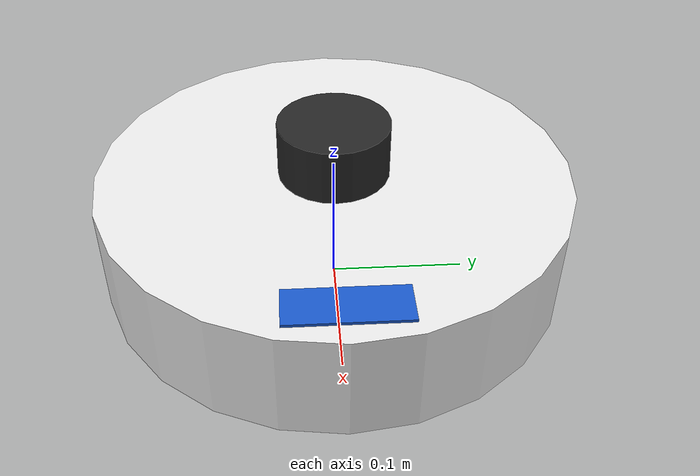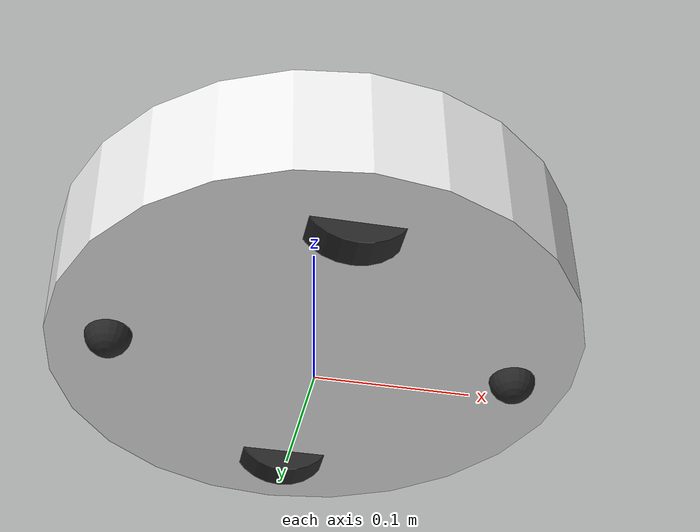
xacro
<?xml version="1.0"?>
<robot name="cleaning_robot" xmlns:xacro="http://www.ros.org/wiki/xacro">

  <!-- ===================== Parameters ===================== -->
  <xacro:property name="PI" value="3.14159265359"/>

  <xacro:property name="chassis_radius" value="0.17"/>
  <xacro:property name="chassis_height" value="0.08"/>
  <xacro:property name="chassis_mass"   value="3.0"/>

  <xacro:property name="wheel_radius"     value="0.035"/>
  <xacro:property name="wheel_width"      value="0.02"/>
  <xacro:property name="wheel_separation" value="0.24"/>
  <xacro:property name="wheel_mass"       value="0.2"/>

  <xacro:property name="caster_radius" value="0.015"/>
  <xacro:property name="caster_offset_x" value="0.13"/>
  <xacro:property name="caster_mass"   value="0.05"/>

  <!-- Chassis bottom sits 1.5 cm above the floor -->
  <xacro:property name="ground_clearance" value="0.015"/>
  <xacro:property name="chassis_z" value="${ground_clearance - wheel_radius + chassis_height / 2}"/>

  <xacro:property name="lidar_radius" value="0.04"/>
  <xacro:property name="lidar_height" value="0.04"/>

  <!-- ===================== Inertia macros ===================== -->
  <xacro:macro name="cylinder_inertia" params="m r h">
    <inertia ixx="${m * (3 * r * r + h * h) / 12}" ixy="0" ixz="0"
             iyy="${m * (3 * r * r + h * h) / 12}" iyz="0"
             izz="${m * r * r / 2}"/>
  </xacro:macro>

  <xacro:macro name="sphere_inertia" params="m r">
    <inertia ixx="${2 * m * r * r / 5}" ixy="0" ixz="0"
             iyy="${2 * m * r * r / 5}" iyz="0"
             izz="${2 * m * r * r / 5}"/>
  </xacro:macro>

  <!-- ===================== Materials ===================== -->
  <material name="white"><color rgba="0.92 0.92 0.92 1.0"/></material>
  <material name="dark"><color rgba="0.15 0.15 0.15 1.0"/></material>
  <material name="blue"><color rgba="0.10 0.35 0.80 1.0"/></material>

  <!-- ===================== Links & joints ===================== -->
  <link name="base_footprint"/>

  <link name="base_link">
    <visual>
      <origin xyz="0 0 ${chassis_z}" rpy="0 0 0"/>
      <geometry><cylinder radius="${chassis_radius}" length="${chassis_height}"/></geometry>
      <material name="white"/>
    </visual>
    <!-- small "front" marker so heading is visible in Gazebo/RViz -->
    <visual>
      <origin xyz="${chassis_radius - 0.03} 0 ${chassis_z + chassis_height / 2}" rpy="0 0 0"/>
      <geometry><box size="0.03 0.08 0.004"/></geometry>
      <material name="blue"/>
    </visual>
    <collision>
      <origin xyz="0 0 ${chassis_z}" rpy="0 0 0"/>
      <geometry><cylinder radius="${chassis_radius}" length="${chassis_height}"/></geometry>
    </collision>
    <inertial>
      <origin xyz="0 0 ${chassis_z}" rpy="0 0 0"/>
      <mass value="${chassis_mass}"/>
      <xacro:cylinder_inertia m="${chassis_mass}" r="${chassis_radius}" h="${chassis_height}"/>
    </inertial>
  </link>

  <joint name="base_joint" type="fixed">
    <parent link="base_footprint"/>
    <child link="base_link"/>
    <origin xyz="0 0 ${wheel_radius}" rpy="0 0 0"/>
  </joint>

  <!-- Drive wheels. Both joints rotate about +Y, so positive velocity = forward. -->
  <xacro:macro name="drive_wheel" params="side y_sign">
    <link name="${side}_wheel_link">
      <visual>
        <geometry><cylinder radius="${wheel_radius}" length="${wheel_width}"/></geometry>
        <material name="dark"/>
      </visual>
      <collision>
        <geometry><cylinder radius="${wheel_radius}" length="${wheel_width}"/></geometry>
      </collision>
      <inertial>
        <mass value="${wheel_mass}"/>
        <xacro:cylinder_inertia m="${wheel_mass}" r="${wheel_radius}" h="${wheel_width}"/>
      </inertial>
    </link>

    <joint name="${side}_wheel_joint" type="continuous">
      <parent link="base_link"/>
      <child link="${side}_wheel_link"/>
      <origin xyz="0 ${y_sign * wheel_separation / 2} 0" rpy="${-PI / 2} 0 0"/>
      <axis xyz="0 0 1"/>
    </joint>
  </xacro:macro>

  <xacro:drive_wheel side="left"  y_sign="1"/>
  <xacro:drive_wheel side="right" y_sign="-1"/>

  <!-- Frictionless casters (front and rear) keep the robot level -->
  <xacro:macro name="caster" params="name x">
    <link name="${name}_caster_link">
      <visual>
        <geometry><sphere radius="${caster_radius}"/></geometry>
        <material name="dark"/>
      </visual>
      <collision>
        <geometry><sphere radius="${caster_radius}"/></geometry>
      </collision>
      <inertial>
        <mass value="${caster_mass}"/>
        <xacro:sphere_inertia m="${caster_mass}" r="${caster_radius}"/>
      </inertial>
    </link>

    <joint name="${name}_caster_joint" type="fixed">
      <parent link="base_link"/>
      <child link="${name}_caster_link"/>
      <origin xyz="${x} 0 ${caster_radius - wheel_radius}" rpy="0 0 0"/>
    </joint>
  </xacro:macro>

  <xacro:caster name="front" x="${caster_offset_x}"/>
  <xacro:caster name="rear"  x="${-caster_offset_x}"/>

  <!-- 2D LiDAR on top of the chassis -->
  <link name="lidar_link">
    <visual>
      <geometry><cylinder radius="${lidar_radius}" length="${lidar_height}"/></geometry>
      <material name="dark"/>
    </visual>
    <collision>
      <geometry><cylinder radius="${lidar_radius}" length="${lidar_height}"/></geometry>
    </collision>
    <inertial>
      <mass value="0.1"/>
      <xacro:cylinder_inertia m="0.1" r="${lidar_radius}" h="${lidar_height}"/>
    </inertial>
  </link>

  <joint name="lidar_joint" type="fixed">
    <parent link="base_link"/>
    <child link="lidar_link"/>
    <origin xyz="0 0 ${chassis_z + chassis_height / 2 + lidar_height / 2}" rpy="0 0 0"/>
  </joint>

  <!-- IMU inside the chassis -->
  <link name="imu_link">
    <inertial>
      <mass value="0.01"/>
      <inertia ixx="1e-6" ixy="0" ixz="0" iyy="1e-6" iyz="0" izz="1e-6"/>
    </inertial>
  </link>

  <joint name="imu_joint" type="fixed">
    <parent link="base_link"/>
    <child link="imu_link"/>
    <origin xyz="0 0 ${chassis_z}" rpy="0 0 0"/>
  </joint>

  <!-- ===================== Gazebo Sim plugins & sensors ===================== -->
  <xacro:include filename="$(find cleaning_robot_description)/urdf/cleaning_robot.gazebo.xacro"/>
  <xacro:cleaning_robot_gazebo wheel_separation="${wheel_separation}" wheel_radius="${wheel_radius}"/>

</robot>
